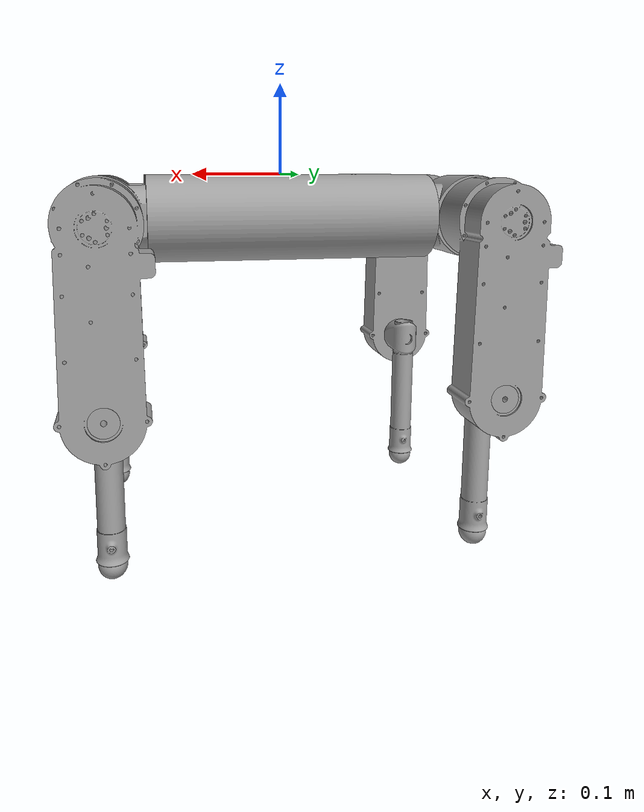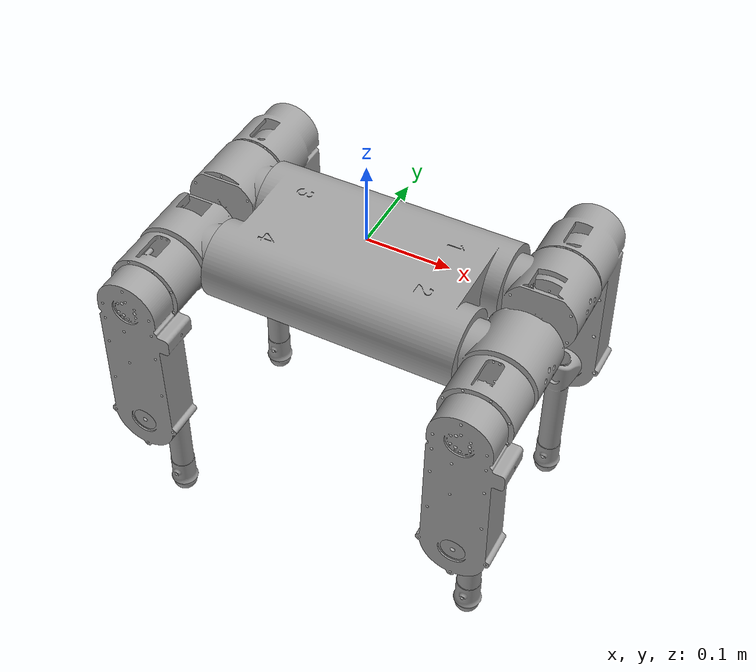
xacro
<?xml version="1.0" ?>
<robot name="mistletoe-v4" xmlns:xacro="http://www.ros.org/wiki/xacro">

<xacro:include filename="$(find mistletoe-v4_description)/urdf/materials.xacro" />
<xacro:include filename="$(find mistletoe-v4_description)/urdf/mistletoe-v4.trans" />
<link name="base_link">
  <inertial>
    <origin xyz="8.934564205453908e-07 7.883956382581658e-07 -0.04550328898512308" rpy="0 0 0"/>
    <mass value="5.5104049208044765"/>
    <inertia ixx="0.020175" iyy="0.044213" izz="0.057638" ixy="-0.0" iyz="-0.0" ixz="-0.0"/>
  </inertial>
  <visual>
    <origin xyz="0 0 0" rpy="0 0 0"/>
    <geometry>
      <mesh filename="package://mistletoe-v4_description/meshes/base_link.stl" scale="0.001 0.001 0.001"/>
    </geometry>
    <material name="steel_satin"/>
  </visual>
  <collision>
    <origin xyz="0 0 0" rpy="0 0 0"/>
    <geometry>
      <mesh filename="package://mistletoe-v4_description/meshes/base_link.stl" scale="0.001 0.001 0.001"/>
    </geometry>
  </collision>
</link>

<link name="THIGH_1">
  <inertial>
    <origin xyz="0.0010935636942111804 0.051036250405863404 -0.04784660292125947" rpy="0 0 0"/>
    <mass value="0.7240002196192582"/>
    <inertia ixx="0.004023" iyy="0.003876" izz="0.000791" ixy="1.7e-05" iyz="0.000584" ixz="-4e-05"/>
  </inertial>
  <visual>
    <origin xyz="-0.19975 -0.08775 0.0455" rpy="0 0 0"/>
    <geometry>
      <mesh filename="package://mistletoe-v4_description/meshes/THIGH_1.stl" scale="0.001 0.001 0.001"/>
    </geometry>
    <material name="steel_satin"/>
  </visual>
  <collision>
    <origin xyz="-0.19975 -0.08775 0.0455" rpy="0 0 0"/>
    <geometry>
      <mesh filename="package://mistletoe-v4_description/meshes/THIGH_1.stl" scale="0.001 0.001 0.001"/>
    </geometry>
  </collision>
</link>

<link name="THIGH_2">
  <inertial>
    <origin xyz="-0.001093563694208266 -0.05103625040585741 -0.04784660292126859" rpy="0 0 0"/>
    <mass value="0.7240002196192582"/>
    <inertia ixx="0.004023" iyy="0.003876" izz="0.000791" ixy="1.7e-05" iyz="-0.000584" ixz="4e-05"/>
  </inertial>
  <visual>
    <origin xyz="-0.19975 0.08775 0.0455" rpy="0 0 0"/>
    <geometry>
      <mesh filename="package://mistletoe-v4_description/meshes/THIGH_2.stl" scale="0.001 0.001 0.001"/>
    </geometry>
    <material name="steel_satin"/>
  </visual>
  <collision>
    <origin xyz="-0.19975 0.08775 0.0455" rpy="0 0 0"/>
    <geometry>
      <mesh filename="package://mistletoe-v4_description/meshes/THIGH_2.stl" scale="0.001 0.001 0.001"/>
    </geometry>
  </collision>
</link>

<link name="THIGH_3">
  <inertial>
    <origin xyz="0.0010935636941983018 0.05103625040585985 -0.04784660292125947" rpy="0 0 0"/>
    <mass value="0.7240002196192582"/>
    <inertia ixx="0.004023" iyy="0.003876" izz="0.000791" ixy="1.7e-05" iyz="0.000584" ixz="-4e-05"/>
  </inertial>
  <visual>
    <origin xyz="0.19975 -0.08775 0.0455" rpy="0 0 0"/>
    <geometry>
      <mesh filename="package://mistletoe-v4_description/meshes/THIGH_3.stl" scale="0.001 0.001 0.001"/>
    </geometry>
    <material name="steel_satin"/>
  </visual>
  <collision>
    <origin xyz="0.19975 -0.08775 0.0455" rpy="0 0 0"/>
    <geometry>
      <mesh filename="package://mistletoe-v4_description/meshes/THIGH_3.stl" scale="0.001 0.001 0.001"/>
    </geometry>
  </collision>
</link>

<link name="THIGH_4">
  <inertial>
    <origin xyz="-0.0010935636942024096 -0.05103625040586318 -0.047846602921261486" rpy="0 0 0"/>
    <mass value="0.7240002196192582"/>
    <inertia ixx="0.004023" iyy="0.003876" izz="0.000791" ixy="1.7e-05" iyz="-0.000584" ixz="4e-05"/>
  </inertial>
  <visual>
    <origin xyz="0.19975 0.08775 0.0455" rpy="0 0 0"/>
    <geometry>
      <mesh filename="package://mistletoe-v4_description/meshes/THIGH_4.stl" scale="0.001 0.001 0.001"/>
    </geometry>
    <material name="steel_satin"/>
  </visual>
  <collision>
    <origin xyz="0.19975 0.08775 0.0455" rpy="0 0 0"/>
    <geometry>
      <mesh filename="package://mistletoe-v4_description/meshes/THIGH_4.stl" scale="0.001 0.001 0.001"/>
    </geometry>
  </collision>
</link>

<link name="SHANK_1">
  <inertial>
    <origin xyz="8.778158588906848e-09 -0.04792404704971809 -0.05711326657615318" rpy="0 0 0"/>
    <mass value="0.08133302860327428"/>
    <inertia ixx="0.000324" iyy="0.000305" izz="3.6e-05" ixy="0.0" iyz="-4.7e-05" ixz="0.0"/>
  </inertial>
  <visual>
    <origin xyz="-0.19975 -0.17891 0.2254" rpy="0 0 0"/>
    <geometry>
      <mesh filename="package://mistletoe-v4_description/meshes/SHANK_1.stl" scale="0.001 0.001 0.001"/>
    </geometry>
    <material name="steel_satin"/>
  </visual>
  <collision>
    <origin xyz="-0.19975 -0.17891 0.2254" rpy="0 0 0"/>
    <geometry>
      <mesh filename="package://mistletoe-v4_description/meshes/SHANK_1.stl" scale="0.001 0.001 0.001"/>
    </geometry>
  </collision>
</link>

<link name="SHANK_2">
  <inertial>
    <origin xyz="-8.778152343902335e-09 0.04792404704972353 -0.05711326657615601" rpy="0 0 0"/>
    <mass value="0.08133302860327428"/>
    <inertia ixx="0.000324" iyy="0.000305" izz="3.6e-05" ixy="0.0" iyz="4.7e-05" ixz="-0.0"/>
  </inertial>
  <visual>
    <origin xyz="-0.19975 0.17891 0.2254" rpy="0 0 0"/>
    <geometry>
      <mesh filename="package://mistletoe-v4_description/meshes/SHANK_2.stl" scale="0.001 0.001 0.001"/>
    </geometry>
    <material name="steel_satin"/>
  </visual>
  <collision>
    <origin xyz="-0.19975 0.17891 0.2254" rpy="0 0 0"/>
    <geometry>
      <mesh filename="package://mistletoe-v4_description/meshes/SHANK_2.stl" scale="0.001 0.001 0.001"/>
    </geometry>
  </collision>
</link>

<link name="SHANK_3">
  <inertial>
    <origin xyz="8.778171217693753e-09 -0.04792404704972264 -0.057113266576134136" rpy="0 0 0"/>
    <mass value="0.08133302860327428"/>
    <inertia ixx="0.000324" iyy="0.000305" izz="3.6e-05" ixy="0.0" iyz="-4.7e-05" ixz="0.0"/>
  </inertial>
  <visual>
    <origin xyz="0.19975 -0.17891 0.2254" rpy="0 0 0"/>
    <geometry>
      <mesh filename="package://mistletoe-v4_description/meshes/SHANK_3.stl" scale="0.001 0.001 0.001"/>
    </geometry>
    <material name="steel_satin"/>
  </visual>
  <collision>
    <origin xyz="0.19975 -0.17891 0.2254" rpy="0 0 0"/>
    <geometry>
      <mesh filename="package://mistletoe-v4_description/meshes/SHANK_3.stl" scale="0.001 0.001 0.001"/>
    </geometry>
  </collision>
</link>

<link name="SHANK_4">
  <inertial>
    <origin xyz="-8.778185067725985e-09 0.04792404704972175 -0.05711326657613752" rpy="0 0 0"/>
    <mass value="0.08133302860327428"/>
    <inertia ixx="0.000324" iyy="0.000305" izz="3.6e-05" ixy="0.0" iyz="4.7e-05" ixz="-0.0"/>
  </inertial>
  <visual>
    <origin xyz="0.19975 0.17891 0.2254" rpy="0 0 0"/>
    <geometry>
      <mesh filename="package://mistletoe-v4_description/meshes/SHANK_4.stl" scale="0.001 0.001 0.001"/>
    </geometry>
    <material name="steel_satin"/>
  </visual>
  <collision>
    <origin xyz="0.19975 0.17891 0.2254" rpy="0 0 0"/>
    <geometry>
      <mesh filename="package://mistletoe-v4_description/meshes/SHANK_4.stl" scale="0.001 0.001 0.001"/>
    </geometry>
  </collision>
</link>

<link name="HIP_1">
  <inertial>
    <origin xyz="0.04348674344436504 0.0003320078953301872 -3.069574053486679e-06" rpy="0 0 0"/>
    <mass value="0.5061938145713982"/>
    <inertia ixx="0.000367" iyy="0.000507" izz="0.00044" ixy="-0.0" iyz="-1e-06" ixz="-2e-06"/>
  </inertial>
  <visual>
    <origin xyz="-0.153 -0.057 0.0455" rpy="0 0 0"/>
    <geometry>
      <mesh filename="package://mistletoe-v4_description/meshes/HIP_1.stl" scale="0.001 0.001 0.001"/>
    </geometry>
    <material name="steel_satin"/>
  </visual>
  <collision>
    <origin xyz="-0.153 -0.057 0.0455" rpy="0 0 0"/>
    <geometry>
      <mesh filename="package://mistletoe-v4_description/meshes/HIP_1.stl" scale="0.001 0.001 0.001"/>
    </geometry>
  </collision>
</link>

<link name="HIP_2">
  <inertial>
    <origin xyz="0.04348674344436615 -0.0003320078953261904 3.069574053611579e-06" rpy="0 0 0"/>
    <mass value="0.5061938145713982"/>
    <inertia ixx="0.000367" iyy="0.000507" izz="0.00044" ixy="0.0" iyz="-1e-06" ixz="2e-06"/>
  </inertial>
  <visual>
    <origin xyz="-0.153 0.057 0.0455" rpy="0 0 0"/>
    <geometry>
      <mesh filename="package://mistletoe-v4_description/meshes/HIP_2.stl" scale="0.001 0.001 0.001"/>
    </geometry>
    <material name="steel_satin"/>
  </visual>
  <collision>
    <origin xyz="-0.153 0.057 0.0455" rpy="0 0 0"/>
    <geometry>
      <mesh filename="package://mistletoe-v4_description/meshes/HIP_2.stl" scale="0.001 0.001 0.001"/>
    </geometry>
  </collision>
</link>

<link name="HIP_3">
  <inertial>
    <origin xyz="-0.04348674344436626 0.00033200789532639163 3.0695740536393346e-06" rpy="0 0 0"/>
    <mass value="0.5061938145713982"/>
    <inertia ixx="0.000367" iyy="0.000507" izz="0.00044" ixy="0.0" iyz="1e-06" ixz="-2e-06"/>
  </inertial>
  <visual>
    <origin xyz="0.153 -0.057 0.0455" rpy="0 0 0"/>
    <geometry>
      <mesh filename="package://mistletoe-v4_description/meshes/HIP_3.stl" scale="0.001 0.001 0.001"/>
    </geometry>
    <material name="steel_satin"/>
  </visual>
  <collision>
    <origin xyz="0.153 -0.057 0.0455" rpy="0 0 0"/>
    <geometry>
      <mesh filename="package://mistletoe-v4_description/meshes/HIP_3.stl" scale="0.001 0.001 0.001"/>
    </geometry>
  </collision>
</link>

<link name="HIP_4">
  <inertial>
    <origin xyz="-0.04348674344436532 -0.00033200789533001374 -3.0695740535699456e-06" rpy="0 0 0"/>
    <mass value="0.5061938145713982"/>
    <inertia ixx="0.000367" iyy="0.000507" izz="0.00044" ixy="-0.0" iyz="1e-06" ixz="2e-06"/>
  </inertial>
  <visual>
    <origin xyz="0.153 0.057 0.0455" rpy="0 0 0"/>
    <geometry>
      <mesh filename="package://mistletoe-v4_description/meshes/HIP_4.stl" scale="0.001 0.001 0.001"/>
    </geometry>
    <material name="steel_satin"/>
  </visual>
  <collision>
    <origin xyz="0.153 0.057 0.0455" rpy="0 0 0"/>
    <geometry>
      <mesh filename="package://mistletoe-v4_description/meshes/HIP_4.stl" scale="0.001 0.001 0.001"/>
    </geometry>
  </collision>
</link>

<link name="FOOT_1">
  <inertial>
    <origin xyz="-1.0547118733938987e-15 3.982925100842749e-15 -3.751899180226559e-07" rpy="0 0 0"/>
    <mass value="0.014674379284917924"/>
    <inertia ixx="1e-06" iyy="1e-06" izz="1e-06" ixy="0.0" iyz="0.0" ixz="0.0"/>
  </inertial>
  <visual>
    <origin xyz="-0.19975 -0.12091 0.397904" rpy="0 0 0"/>
    <geometry>
      <mesh filename="package://mistletoe-v4_description/meshes/FOOT_1.stl" scale="0.001 0.001 0.001"/>
    </geometry>
    <material name="steel_satin"/>
  </visual>
  <collision>
    <origin xyz="-0.19975 -0.12091 0.397904" rpy="0 0 0"/>
    <geometry>
      <mesh filename="package://mistletoe-v4_description/meshes/FOOT_1.stl" scale="0.001 0.001 0.001"/>
    </geometry>
  </collision>
</link>

<link name="FOOT_2">
  <inertial>
    <origin xyz="7.244205235679146e-15 -2.886579864025407e-15 -3.7518991713447747e-07" rpy="0 0 0"/>
    <mass value="0.014674379284917924"/>
    <inertia ixx="1e-06" iyy="1e-06" izz="1e-06" ixy="0.0" iyz="0.0" ixz="0.0"/>
  </inertial>
  <visual>
    <origin xyz="-0.19975 0.12091 0.397904" rpy="0 0 0"/>
    <geometry>
      <mesh filename="package://mistletoe-v4_description/meshes/FOOT_2.stl" scale="0.001 0.001 0.001"/>
    </geometry>
    <material name="steel_satin"/>
  </visual>
  <collision>
    <origin xyz="-0.19975 0.12091 0.397904" rpy="0 0 0"/>
    <geometry>
      <mesh filename="package://mistletoe-v4_description/meshes/FOOT_2.stl" scale="0.001 0.001 0.001"/>
    </geometry>
  </collision>
</link>

<link name="FOOT_3">
  <inertial>
    <origin xyz="1.9290125052862095e-14 -2.2620794126737565e-15 -3.7518988832419e-07" rpy="0 0 0"/>
    <mass value="0.014674379284917924"/>
    <inertia ixx="1e-06" iyy="1e-06" izz="1e-06" ixy="-0.0" iyz="-0.0" ixz="0.0"/>
  </inertial>
  <visual>
    <origin xyz="0.19975 -0.12091 0.397904" rpy="0 0 0"/>
    <geometry>
      <mesh filename="package://mistletoe-v4_description/meshes/FOOT_3.stl" scale="0.001 0.001 0.001"/>
    </geometry>
    <material name="steel_satin"/>
  </visual>
  <collision>
    <origin xyz="0.19975 -0.12091 0.397904" rpy="0 0 0"/>
    <geometry>
      <mesh filename="package://mistletoe-v4_description/meshes/FOOT_3.stl" scale="0.001 0.001 0.001"/>
    </geometry>
  </collision>
</link>

<link name="FOOT_4">
  <inertial>
    <origin xyz="-3.497202527569243e-14 2.55351295663786e-15 -3.7518989165485905e-07" rpy="0 0 0"/>
    <mass value="0.014674379284917924"/>
    <inertia ixx="1e-06" iyy="1e-06" izz="1e-06" ixy="0.0" iyz="-0.0" ixz="0.0"/>
  </inertial>
  <visual>
    <origin xyz="0.19975 0.12091 0.397904" rpy="0 0 0"/>
    <geometry>
      <mesh filename="package://mistletoe-v4_description/meshes/FOOT_4.stl" scale="0.001 0.001 0.001"/>
    </geometry>
    <material name="steel_satin"/>
  </visual>
  <collision>
    <origin xyz="0.19975 0.12091 0.397904" rpy="0 0 0"/>
    <geometry>
      <mesh filename="package://mistletoe-v4_description/meshes/FOOT_4.stl" scale="0.001 0.001 0.001"/>
    </geometry>
  </collision>
</link>

<joint name="HFE_1" type="continuous">
  <origin xyz="0.04675 0.03075 0.0" rpy="0 0 0"/>
  <parent link="HIP_1"/>
  <child link="THIGH_1"/>
  <axis xyz="-0.0 1.0 -0.0"/>
</joint>

<joint name="HFE_2" type="continuous">
  <origin xyz="0.04675 -0.03075 0.0" rpy="0 0 0"/>
  <parent link="HIP_2"/>
  <child link="THIGH_2"/>
  <axis xyz="0.0 -1.0 0.0"/>
</joint>

<joint name="HFE_3" type="continuous">
  <origin xyz="-0.04675 0.03075 0.0" rpy="0 0 0"/>
  <parent link="HIP_3"/>
  <child link="THIGH_3"/>
  <axis xyz="-0.0 1.0 0.0"/>
</joint>

<joint name="HFE_4" type="continuous">
  <origin xyz="-0.04675 -0.03075 0.0" rpy="0 0 0"/>
  <parent link="HIP_4"/>
  <child link="THIGH_4"/>
  <axis xyz="0.0 -1.0 0.0"/>
</joint>

<joint name="KFE_1" type="continuous">
  <origin xyz="0.0 0.09116 -0.1799" rpy="0 0 0"/>
  <parent link="THIGH_1"/>
  <child link="SHANK_1"/>
  <axis xyz="0.0 -1.0 -0.0"/>
</joint>

<joint name="KFE_2" type="continuous">
  <origin xyz="0.0 -0.09116 -0.1799" rpy="0 0 0"/>
  <parent link="THIGH_2"/>
  <child link="SHANK_2"/>
  <axis xyz="-0.0 1.0 0.0"/>
</joint>

<joint name="KFE_3" type="continuous">
  <origin xyz="0.0 0.09116 -0.1799" rpy="0 0 0"/>
  <parent link="THIGH_3"/>
  <child link="SHANK_3"/>
  <axis xyz="0.0 -1.0 -0.0"/>
</joint>

<joint name="KFE_4" type="continuous">
  <origin xyz="0.0 -0.09116 -0.1799" rpy="0 0 0"/>
  <parent link="THIGH_4"/>
  <child link="SHANK_4"/>
  <axis xyz="-0.0 1.0 0.0"/>
</joint>

<joint name="HAA_1" type="continuous">
  <origin xyz="0.153 0.057 -0.0455" rpy="0 0 0"/>
  <parent link="base_link"/>
  <child link="HIP_1"/>
  <axis xyz="1.0 0.0 -0.0"/>
</joint>

<joint name="HAA_2" type="continuous">
  <origin xyz="0.153 -0.057 -0.0455" rpy="0 0 0"/>
  <parent link="base_link"/>
  <child link="HIP_2"/>
  <axis xyz="1.0 0.0 -0.0"/>
</joint>

<joint name="HAA_3" type="continuous">
  <origin xyz="-0.153 0.057 -0.0455" rpy="0 0 0"/>
  <parent link="base_link"/>
  <child link="HIP_3"/>
  <axis xyz="-1.0 -0.0 0.0"/>
</joint>

<joint name="HAA_4" type="continuous">
  <origin xyz="-0.153 -0.057 -0.0455" rpy="0 0 0"/>
  <parent link="base_link"/>
  <child link="HIP_4"/>
  <axis xyz="-1.0 -0.0 0.0"/>
</joint>

<joint name="Rigid 34" type="fixed">
  <origin xyz="0.0 -0.058 -0.172504" rpy="0 0 0"/>
  <parent link="SHANK_1"/>
  <child link="FOOT_1"/>
</joint>

<joint name="Rigid 35" type="fixed">
  <origin xyz="0.0 0.058 -0.172504" rpy="0 0 0"/>
  <parent link="SHANK_2"/>
  <child link="FOOT_2"/>
</joint>

<joint name="Rigid 36" type="fixed">
  <origin xyz="0.0 -0.058 -0.172504" rpy="0 0 0"/>
  <parent link="SHANK_3"/>
  <child link="FOOT_3"/>
</joint>

<joint name="Rigid 37" type="fixed">
  <origin xyz="0.0 0.058 -0.172504" rpy="0 0 0"/>
  <parent link="SHANK_4"/>
  <child link="FOOT_4"/>
</joint>

</robot>

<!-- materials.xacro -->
<robot name="mistletoe-v4" xmlns:xacro="http://www.ros.org/wiki/xacro" >

<material name="silver_default">
  <color rgba="0.700 0.700 0.700 1.000"/>
</material>
<material name="steel_satin">
  <color rgba="0.6274509803921569 0.6274509803921569 0.6274509803921569 1.0"/>
</material>

</robot>
